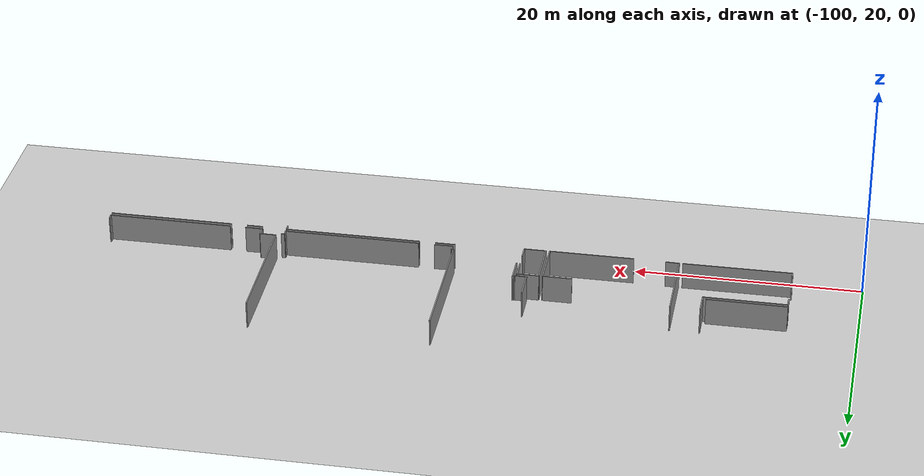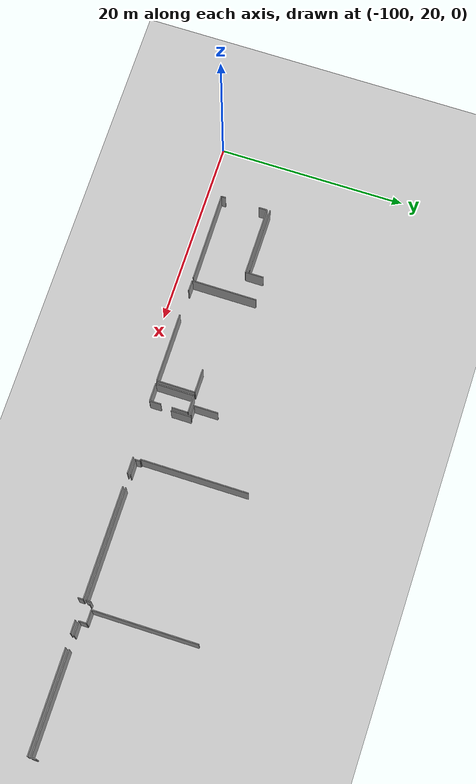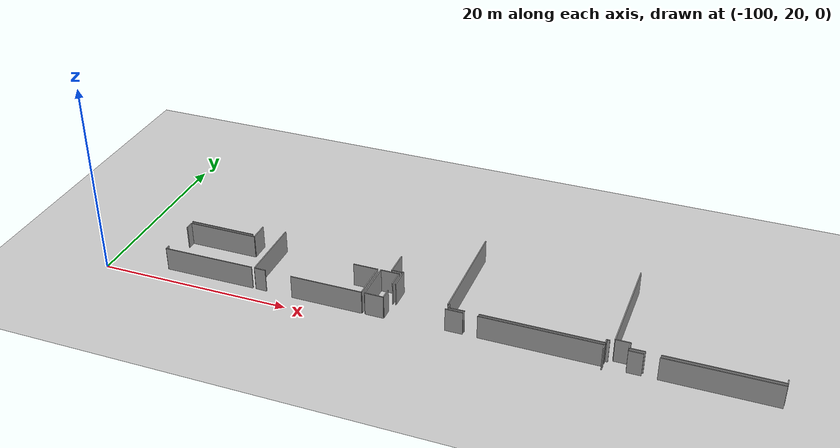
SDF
<sdf version="1.6">
 <world name="default">
  <model name="ground_plane">
   <static>1</static>
   <link name="link">
    <collision name="collision">
     <geometry><plane><normal>0 0 1</normal><size>100 100</size></plane></geometry>
     <surface><friction><ode><mu>100</mu><mu2>50</mu2></ode></friction></surface>
    </collision>
    <visual name="visual">
     <cast_shadows>0</cast_shadows>
     <geometry><plane><normal>0 0 1</normal><size>100 100</size></plane></geometry>
     <material>
      <script><uri>file://media/materials/scripts/gazebo.material</uri><name>Gazebo/Grey</name></script>
     </material>
    </visual>
   </link>
  </model>
  <model name="0510035741_A_40_1_104">
   <static>1</static>
   <link name="Wall_37">
    <collision name="Wall_37_Collision">
     <geometry><box><size>7.02129844527 0.1 2.5</size></box></geometry>
     <pose>3.51064922263 0 1.25 0 0 0</pose>
    </collision>
    <visual name="Wall_37_Visual">
     <pose>3.51064922263 0 1.25 0 0 0</pose>
     <geometry><box><size>7.02129844527 0.1 2.5</size></box></geometry>
     <material>
      <script><uri>file://media/materials/scripts/gazebo.material</uri><name>Gazebo/Grey</name></script>
      <ambient>1 1 1 1</ambient>
     </material>
    </visual>
    <pose>7.02129145738 -22.5134460665 0 0 0 3.1401818091</pose>
   </link>
   <link name="Wall_38">
    <collision name="Wall_38_Collision">
     <geometry><box><size>0.480057911748 0.1 2.5</size></box></geometry>
     <pose>0.240028955874 0 1.25 0 0 0</pose>
    </collision>
    <visual name="Wall_38_Visual">
     <pose>0.240028955874 0 1.25 0 0 0</pose>
     <geometry><box><size>0.480057911748 0.1 2.5</size></box></geometry>
     <material>
      <script><uri>file://media/materials/scripts/gazebo.material</uri><name>Gazebo/Grey</name></script>
      <ambient>1 1 1 1</ambient>
     </material>
    </visual>
    <pose>0.0304798674126 -27.8690127698 0 0 0 1.57079632679</pose>
   </link>
   <link name="Wall_39">
    <collision name="Wall_39_Collision">
     <geometry><box><size>0.88518614944 0.1 2.5</size></box></geometry>
     <pose>0.44259307472 0 1.25 0 0 0</pose>
    </collision>
    <visual name="Wall_39_Visual">
     <pose>0.44259307472 0 1.25 0 0 0</pose>
     <geometry><box><size>0.88518614944 0.1 2.5</size></box></geometry>
     <material>
      <script><uri>file://media/materials/scripts/gazebo.material</uri><name>Gazebo/Grey</name></script>
      <ambient>1 1 1 1</ambient>
     </material>
    </visual>
    <pose>0.0304798674126 -23.7138448448 0 0 0 1.57079632679</pose>
   </link>
   <link name="Wall_40">
    <collision name="Wall_40_Collision">
     <geometry><box><size>7.29383227183 0.1 2.5</size></box></geometry>
     <pose>3.64691613591 0 1.25 0 0 0</pose>
    </collision>
    <visual name="Wall_40_Visual">
     <pose>3.64691613591 0 1.25 0 0 0</pose>
     <geometry><box><size>7.29383227183 0.1 2.5</size></box></geometry>
     <material>
      <script><uri>file://media/materials/scripts/gazebo.material</uri><name>Gazebo/Grey</name></script>
      <ambient>1 1 1 1</ambient>
     </material>
    </visual>
    <pose>0.0304798674126 -22.8286586953 0 0 0 0.0</pose>
   </link>
   <link name="Wall_41">
    <collision name="Wall_41_Collision">
     <geometry><box><size>1.94156755418 0.1 2.5</size></box></geometry>
     <pose>0.970783777091 0 1.25 0 0 0</pose>
    </collision>
    <visual name="Wall_41_Visual">
     <pose>0.970783777091 0 1.25 0 0 0</pose>
     <geometry><box><size>1.94156755418 0.1 2.5</size></box></geometry>
     <material>
      <script><uri>file://media/materials/scripts/gazebo.material</uri><name>Gazebo/Grey</name></script>
      <ambient>1 1 1 1</ambient>
     </material>
    </visual>
    <pose>7.32431213924 -22.8286586953 0 0 0 1.57079632679</pose>
   </link>
   <link name="Wall_45">
    <collision name="Wall_45_Collision">
     <geometry><box><size>9.56702569827 0.1 2.5</size></box></geometry>
     <pose>4.78351284914 0 1.25 0 0 0</pose>
    </collision>
    <visual name="Wall_45_Visual">
     <pose>4.78351284914 0 1.25 0 0 0</pose>
     <geometry><box><size>9.56702569827 0.1 2.5</size></box></geometry>
     <material>
      <script><uri>file://media/materials/scripts/gazebo.material</uri><name>Gazebo/Grey</name></script>
      <ambient>1 1 1 1</ambient>
     </material>
    </visual>
    <pose>9.59734825154 -27.8141490085 0 0 0 -3.13585794943</pose>
   </link>
   <link name="Wall_46">
    <collision name="Wall_46_Collision">
     <geometry><box><size>6.94001181095 0.1 2.5</size></box></geometry>
     <pose>3.47000590547 0 1.25 0 0 0</pose>
    </collision>
    <visual name="Wall_46_Visual">
     <pose>3.47000590547 0 1.25 0 0 0</pose>
     <geometry><box><size>6.94001181095 0.1 2.5</size></box></geometry>
     <material>
      <script><uri>file://media/materials/scripts/gazebo.material</uri><name>Gazebo/Grey</name></script>
      <ambient>1 1 1 1</ambient>
     </material>
    </visual>
    <pose>9.91662486268 -27.805513046 0 0 0 1.57079632679</pose>
   </link>
   <link name="Wall_50">
    <collision name="Wall_50_Collision">
     <geometry><box><size>1.17370753971 0.1 2.5</size></box></geometry>
     <pose>0.586853769855 0 1.25 0 0 0</pose>
    </collision>
    <visual name="Wall_50_Visual">
     <pose>0.586853769855 0 1.25 0 0 0</pose>
     <geometry><box><size>1.17370753971 0.1 2.5</size></box></geometry>
     <material>
      <script><uri>file://media/materials/scripts/gazebo.material</uri><name>Gazebo/Grey</name></script>
      <ambient>1 1 1 1</ambient>
     </material>
    </visual>
    <pose>11.0900997581 -27.8288809444 0 0 0 3.12168186523</pose>
   </link>
   <link name="Wall_55">
    <collision name="Wall_55_Collision">
     <geometry><box><size>2.55980086487 0.1 2.5</size></box></geometry>
     <pose>1.27990043243 0 1.25 0 0 0</pose>
    </collision>
    <visual name="Wall_55_Visual">
     <pose>1.27990043243 0 1.25 0 0 0</pose>
     <geometry><box><size>2.55980086487 0.1 2.5</size></box></geometry>
     <material>
      <script><uri>file://media/materials/scripts/gazebo.material</uri><name>Gazebo/Grey</name></script>
      <ambient>1 1 1 1</ambient>
     </material>
    </visual>
    <pose>18.7692483538 -23.7661686172 0 0 0 0.0</pose>
   </link>
   <link name="Wall_56">
    <collision name="Wall_56_Collision">
     <geometry><box><size>4.09166820124 0.1 2.5</size></box></geometry>
     <pose>2.04583410062 0 1.25 0 0 0</pose>
    </collision>
    <visual name="Wall_56_Visual">
     <pose>2.04583410062 0 1.25 0 0 0</pose>
     <geometry><box><size>4.09166820124 0.1 2.5</size></box></geometry>
     <material>
      <script><uri>file://media/materials/scripts/gazebo.material</uri><name>Gazebo/Grey</name></script>
      <ambient>1 1 1 1</ambient>
     </material>
    </visual>
    <pose>21.3290492186 -23.7661686172 0 0 0 -1.57079632679</pose>
   </link>
   <link name="Wall_57">
    <collision name="Wall_57_Collision">
     <geometry><box><size>7.45437363312 0.1 2.5</size></box></geometry>
     <pose>3.72718681656 0 1.25 0 0 0</pose>
    </collision>
    <visual name="Wall_57_Visual">
     <pose>3.72718681656 0 1.25 0 0 0</pose>
     <geometry><box><size>7.45437363312 0.1 2.5</size></box></geometry>
     <material>
      <script><uri>file://media/materials/scripts/gazebo.material</uri><name>Gazebo/Grey</name></script>
      <ambient>1 1 1 1</ambient>
     </material>
    </visual>
    <pose>21.3290492186 -27.8578368184 0 0 0 -3.13965044532</pose>
   </link>
   <link name="Wall_65">
    <collision name="Wall_65_Collision">
     <geometry><box><size>4.09624018136 0.1 2.5</size></box></geometry>
     <pose>2.04812009068 0 1.25 0 0 0</pose>
    </collision>
    <visual name="Wall_65_Visual">
     <pose>2.04812009068 0 1.25 0 0 0</pose>
     <geometry><box><size>4.09624018136 0.1 2.5</size></box></geometry>
     <material>
      <script><uri>file://media/materials/scripts/gazebo.material</uri><name>Gazebo/Grey</name></script>
      <ambient>1 1 1 1</ambient>
     </material>
    </visual>
    <pose>21.6683917425 -27.8504708505 0 0 0 1.57079632679</pose>
   </link>
   <link name="Wall_66">
    <collision name="Wall_66_Collision">
     <geometry><box><size>1.90981769229 0.1 2.5</size></box></geometry>
     <pose>0.954908846147 0 1.25 0 0 0</pose>
    </collision>
    <visual name="Wall_66_Visual">
     <pose>0.954908846147 0 1.25 0 0 0</pose>
     <geometry><box><size>1.90981769229 0.1 2.5</size></box></geometry>
     <material>
      <script><uri>file://media/materials/scripts/gazebo.material</uri><name>Gazebo/Grey</name></script>
      <ambient>1 1 1 1</ambient>
     </material>
    </visual>
    <pose>21.6683917425 -23.7542306691 0 0 0 0.0</pose>
   </link>
   <link name="Wall_67">
    <collision name="Wall_67_Collision">
     <geometry><box><size>1.71855652428 0.1 2.5</size></box></geometry>
     <pose>0.85927826214 0 1.25 0 0 0</pose>
    </collision>
    <visual name="Wall_67_Visual">
     <pose>0.85927826214 0 1.25 0 0 0</pose>
     <geometry><box><size>1.71855652428 0.1 2.5</size></box></geometry>
     <material>
      <script><uri>file://media/materials/scripts/gazebo.material</uri><name>Gazebo/Grey</name></script>
      <ambient>1 1 1 1</ambient>
     </material>
    </visual>
    <pose>23.5782094348 -23.7542306691 0 0 0 -1.57079632679</pose>
   </link>
   <link name="Wall_68">
    <collision name="Wall_68_Collision">
     <geometry><box><size>1.20243076943 0.1 2.5</size></box></geometry>
     <pose>0.601215384713 0 1.25 0 0 0</pose>
    </collision>
    <visual name="Wall_68_Visual">
     <pose>0.601215384713 0 1.25 0 0 0</pose>
     <geometry><box><size>1.20243076943 0.1 2.5</size></box></geometry>
     <material>
      <script><uri>file://media/materials/scripts/gazebo.material</uri><name>Gazebo/Grey</name></script>
      <ambient>1 1 1 1</ambient>
     </material>
    </visual>
    <pose>23.5782094348 -26.6531200589 0 0 0 -1.57079632679</pose>
   </link>
   <link name="Wall_69">
    <collision name="Wall_69_Collision">
     <geometry><box><size>1.90982444847 0.1 2.5</size></box></geometry>
     <pose>0.954912224235 0 1.25 0 0 0</pose>
    </collision>
    <visual name="Wall_69_Visual">
     <pose>0.954912224235 0 1.25 0 0 0</pose>
     <geometry><box><size>1.90982444847 0.1 2.5</size></box></geometry>
     <material>
      <script><uri>file://media/materials/scripts/gazebo.material</uri><name>Gazebo/Grey</name></script>
      <ambient>1 1 1 1</ambient>
     </material>
    </visual>
    <pose>23.5782094348 -27.8555508284 0 0 0 3.13893273168</pose>
   </link>
   <link name="Wall_70">
    <collision name="Wall_70_Collision">
     <geometry><box><size>2.57808878531 0.1 2.5</size></box></geometry>
     <pose>1.28904439266 0 1.25 0 0 0</pose>
    </collision>
    <visual name="Wall_70_Visual">
     <pose>1.28904439266 0 1.25 0 0 0</pose>
     <geometry><box><size>2.57808878531 0.1 2.5</size></box></geometry>
     <material>
      <script><uri>file://media/materials/scripts/gazebo.material</uri><name>Gazebo/Grey</name></script>
      <ambient>1 1 1 1</ambient>
     </material>
    </visual>
    <pose>22.6996272566 -23.4103161651 0 0 0 1.57079632679</pose>
   </link>
   <link name="Wall_73">
    <collision name="Wall_73_Collision">
     <geometry><box><size>0.114553501692 0.1 2.5</size></box></geometry>
     <pose>0.0572767508461 0 1.25 0 0 0</pose>
    </collision>
    <visual name="Wall_73_Visual">
     <pose>0.0572767508461 0 1.25 0 0 0</pose>
     <geometry><box><size>0.114553501692 0.1 2.5</size></box></geometry>
     <material>
      <script><uri>file://media/materials/scripts/gazebo.material</uri><name>Gazebo/Grey</name></script>
      <ambient>1 1 1 1</ambient>
     </material>
    </visual>
    <pose>23.7595646459 -23.3244645386 0 0 0 -1.57079632679</pose>
   </link>
   <link name="Wall_74">
    <collision name="Wall_74_Collision">
     <geometry><box><size>1.06032592481 0.1 2.5</size></box></geometry>
     <pose>0.530162962403 0 1.25 0 0 0</pose>
    </collision>
    <visual name="Wall_74_Visual">
     <pose>0.530162962403 0 1.25 0 0 0</pose>
     <geometry><box><size>1.06032592481 0.1 2.5</size></box></geometry>
     <material>
      <script><uri>file://media/materials/scripts/gazebo.material</uri><name>Gazebo/Grey</name></script>
      <ambient>1 1 1 1</ambient>
     </material>
    </visual>
    <pose>23.7595646459 -23.4390180403 0 0 0 3.11452042916</pose>
   </link>
   <link name="Wall_85">
    <collision name="Wall_85_Collision">
     <geometry><box><size>2.14933865038 0.1 2.5</size></box></geometry>
     <pose>1.07466932519 0 1.25 0 0 0</pose>
    </collision>
    <visual name="Wall_85_Visual">
     <pose>1.07466932519 0 1.25 0 0 0</pose>
     <geometry><box><size>2.14933865038 0.1 2.5</size></box></geometry>
     <material>
      <script><uri>file://media/materials/scripts/gazebo.material</uri><name>Gazebo/Grey</name></script>
      <ambient>1 1 1 1</ambient>
     </material>
    </visual>
    <pose>23.8952000559 -25.461611242 0 0 0 1.57079632679</pose>
   </link>
   <link name="Wall_110">
    <collision name="Wall_110_Collision">
     <geometry><box><size>1.77189629225 0.1 2.5</size></box></geometry>
     <pose>0.885948146126 0 1.25 0 0 0</pose>
    </collision>
    <visual name="Wall_110_Visual">
     <pose>0.885948146126 0 1.25 0 0 0</pose>
     <geometry><box><size>1.77189629225 0.1 2.5</size></box></geometry>
     <material>
      <script><uri>file://media/materials/scripts/gazebo.material</uri><name>Gazebo/Grey</name></script>
      <ambient>1 1 1 1</ambient>
     </material>
    </visual>
    <pose>29.6889148532 -27.5383062084 0 0 0 0.0</pose>
   </link>
   <link name="Wall_111">
    <collision name="Wall_111_Collision">
     <geometry><box><size>12.0159257307 0.1 2.5</size></box></geometry>
     <pose>6.00796286536 0 1.25 0 0 0</pose>
    </collision>
    <visual name="Wall_111_Visual">
     <pose>6.00796286536 0 1.25 0 0 0</pose>
     <geometry><box><size>12.0159257307 0.1 2.5</size></box></geometry>
     <material>
      <script><uri>file://media/materials/scripts/gazebo.material</uri><name>Gazebo/Grey</name></script>
      <ambient>1 1 1 1</ambient>
     </material>
    </visual>
    <pose>32.888284936 -27.5383062084 0 0 0 0.0</pose>
   </link>
   <link name="Wall_112">
    <collision name="Wall_112_Collision">
     <geometry><box><size>0.552955594643 0.1 2.5</size></box></geometry>
     <pose>0.276477797322 0 1.25 0 0 0</pose>
    </collision>
    <visual name="Wall_112_Visual">
     <pose>0.276477797322 0 1.25 0 0 0</pose>
     <geometry><box><size>0.552955594643 0.1 2.5</size></box></geometry>
     <material>
      <script><uri>file://media/materials/scripts/gazebo.material</uri><name>Gazebo/Grey</name></script>
      <ambient>1 1 1 1</ambient>
     </material>
    </visual>
    <pose>44.9042106667 -27.5383062084 0 0 0 -1.57079632679</pose>
   </link>
   <link name="Wall_117">
    <collision name="Wall_117_Collision">
     <geometry><box><size>1.40562988551 0.1 2.5</size></box></geometry>
     <pose>0.702814942755 0 1.25 0 0 0</pose>
    </collision>
    <visual name="Wall_117_Visual">
     <pose>0.702814942755 0 1.25 0 0 0</pose>
     <geometry><box><size>1.40562988551 0.1 2.5</size></box></geometry>
     <material>
      <script><uri>file://media/materials/scripts/gazebo.material</uri><name>Gazebo/Grey</name></script>
      <ambient>1 1 1 1</ambient>
     </material>
    </visual>
    <pose>47.0675192563 -27.5969799531 0 0 0 0.0</pose>
   </link>
   <link name="Wall_118">
    <collision name="Wall_118_Collision">
     <geometry><box><size>11.0123760962 0.1 2.5</size></box></geometry>
     <pose>5.50618804808 0 1.25 0 0 0</pose>
    </collision>
    <visual name="Wall_118_Visual">
     <pose>5.50618804808 0 1.25 0 0 0</pose>
     <geometry><box><size>11.0123760962 0.1 2.5</size></box></geometry>
     <material>
      <script><uri>file://media/materials/scripts/gazebo.material</uri><name>Gazebo/Grey</name></script>
      <ambient>1 1 1 1</ambient>
     </material>
    </visual>
    <pose>49.908496898 -27.5969799531 0 0 0 0.0</pose>
   </link>
   <link name="Wall_148">
    <collision name="Wall_148_Collision">
     <geometry><box><size>0.518411744909 0.1 2.5</size></box></geometry>
     <pose>0.259205872454 0 1.25 0 0 0</pose>
    </collision>
    <visual name="Wall_148_Visual">
     <pose>0.259205872454 0 1.25 0 0 0</pose>
     <geometry><box><size>0.518411744909 0.1 2.5</size></box></geometry>
     <material>
      <script><uri>file://media/materials/scripts/gazebo.material</uri><name>Gazebo/Grey</name></script>
      <ambient>1 1 1 1</ambient>
     </material>
    </visual>
    <pose>29.8766200367 -27.2543354436 0 0 0 1.57079632679</pose>
   </link>
   <link name="Wall_149">
    <collision name="Wall_149_Collision">
     <geometry><box><size>0.172719248671 0.1 2.5</size></box></geometry>
     <pose>0.0863596243356 0 1.25 0 0 0</pose>
    </collision>
    <visual name="Wall_149_Visual">
     <pose>0.0863596243356 0 1.25 0 0 0</pose>
     <geometry><box><size>0.172719248671 0.1 2.5</size></box></geometry>
     <material>
      <script><uri>file://media/materials/scripts/gazebo.material</uri><name>Gazebo/Grey</name></script>
      <ambient>1 1 1 1</ambient>
     </material>
    </visual>
    <pose>29.8766200367 -26.7359236987 0 0 0 3.14159265359</pose>
   </link>
   <link name="Wall_150">
    <collision name="Wall_150_Collision">
     <geometry><box><size>11.4304582775 0.1 2.5</size></box></geometry>
     <pose>5.71522913875 0 1.25 0 0 0</pose>
    </collision>
    <visual name="Wall_150_Visual">
     <pose>5.71522913875 0 1.25 0 0 0</pose>
     <geometry><box><size>11.4304582775 0.1 2.5</size></box></geometry>
     <material>
      <script><uri>file://media/materials/scripts/gazebo.material</uri><name>Gazebo/Grey</name></script>
      <ambient>1 1 1 1</ambient>
     </material>
    </visual>
    <pose>29.703900788 -26.7359236987 0 0 0 1.57079632679</pose>
   </link>
   <link name="Wall_156">
    <collision name="Wall_156_Collision">
     <geometry><box><size>0.310640648713 0.1 2.5</size></box></geometry>
     <pose>0.155320324357 0 1.25 0 0 0</pose>
    </collision>
    <visual name="Wall_156_Visual">
     <pose>0.155320324357 0 1.25 0 0 0</pose>
     <geometry><box><size>0.310640648713 0.1 2.5</size></box></geometry>
     <material>
      <script><uri>file://media/materials/scripts/gazebo.material</uri><name>Gazebo/Grey</name></script>
      <ambient>1 1 1 1</ambient>
     </material>
    </visual>
    <pose>45.2090093408 -26.7394796833 0 0 0 3.14159265359</pose>
   </link>
   <link name="Wall_157">
    <collision name="Wall_157_Collision">
     <geometry><box><size>0.479295915063 0.1 2.5</size></box></geometry>
     <pose>0.239647957531 0 1.25 0 0 0</pose>
    </collision>
    <visual name="Wall_157_Visual">
     <pose>0.239647957531 0 1.25 0 0 0</pose>
     <geometry><box><size>0.479295915063 0.1 2.5</size></box></geometry>
     <material>
      <script><uri>file://media/materials/scripts/gazebo.material</uri><name>Gazebo/Grey</name></script>
      <ambient>1 1 1 1</ambient>
     </material>
    </visual>
    <pose>44.8983686921 -26.7394796833 0 0 0 -1.57079632679</pose>
   </link>
   <link name="Wall_158">
    <collision name="Wall_158_Collision">
     <geometry><box><size>11.9854458633 0.1 2.5</size></box></geometry>
     <pose>5.99272293166 0 1.25 0 0 0</pose>
    </collision>
    <visual name="Wall_158_Visual">
     <pose>5.99272293166 0 1.25 0 0 0</pose>
     <geometry><box><size>11.9854458633 0.1 2.5</size></box></geometry>
     <material>
      <script><uri>file://media/materials/scripts/gazebo.material</uri><name>Gazebo/Grey</name></script>
      <ambient>1 1 1 1</ambient>
     </material>
    </visual>
    <pose>44.8983686921 -27.2187755983 0 0 0 3.14159265359</pose>
   </link>
   <link name="Wall_159">
    <collision name="Wall_159_Collision">
     <geometry><box><size>1.63106058466 0.1 2.5</size></box></geometry>
     <pose>0.81553029233 0 1.25 0 0 0</pose>
    </collision>
    <visual name="Wall_159_Visual">
     <pose>0.81553029233 0 1.25 0 0 0</pose>
     <geometry><box><size>1.63106058466 0.1 2.5</size></box></geometry>
     <material>
      <script><uri>file://media/materials/scripts/gazebo.material</uri><name>Gazebo/Grey</name></script>
      <ambient>1 1 1 1</ambient>
     </material>
    </visual>
    <pose>31.5072929433 -27.2187755983 0 0 0 -3.11978925569</pose>
   </link>
   <link name="Wall_160">
    <collision name="Wall_160_Collision">
     <geometry><box><size>0.79857252621 0.1 2.5</size></box></geometry>
     <pose>0.399286263105 0 1.25 0 0 0</pose>
    </collision>
    <visual name="Wall_160_Visual">
     <pose>0.399286263105 0 1.25 0 0 0</pose>
     <geometry><box><size>0.79857252621 0.1 2.5</size></box></geometry>
     <material>
      <script><uri>file://media/materials/scripts/gazebo.material</uri><name>Gazebo/Grey</name></script>
      <ambient>1 1 1 1</ambient>
     </material>
    </visual>
    <pose>47.0477073425 -27.2332535353 0 0 0 1.57079632679</pose>
   </link>
   <link name="Wall_161">
    <collision name="Wall_161_Collision">
     <geometry><box><size>1.42315580927 0.1 2.5</size></box></geometry>
     <pose>0.711577904636 0 1.25 0 0 0</pose>
    </collision>
    <visual name="Wall_161_Visual">
     <pose>0.711577904636 0 1.25 0 0 0</pose>
     <geometry><box><size>1.42315580927 0.1 2.5</size></box></geometry>
     <material>
      <script><uri>file://media/materials/scripts/gazebo.material</uri><name>Gazebo/Grey</name></script>
      <ambient>1 1 1 1</ambient>
     </material>
    </visual>
    <pose>47.0477073425 -26.4346810091 0 0 0 3.14159265359</pose>
   </link>
   <link name="Wall_162">
    <collision name="Wall_162_Collision">
     <geometry><box><size>11.1475035084 0.1 2.5</size></box></geometry>
     <pose>5.57375175418 0 1.25 0 0 0</pose>
    </collision>
    <visual name="Wall_162_Visual">
     <pose>5.57375175418 0 1.25 0 0 0</pose>
     <geometry><box><size>11.1475035084 0.1 2.5</size></box></geometry>
     <material>
      <script><uri>file://media/materials/scripts/gazebo.material</uri><name>Gazebo/Grey</name></script>
      <ambient>1 1 1 1</ambient>
     </material>
    </visual>
    <pose>45.6245515332 -26.4346810091 0 0 0 1.57079632679</pose>
   </link>
   <link name="Wall_177">
    <collision name="Wall_177_Collision">
     <geometry><box><size>0.516125754853 0.1 2.5</size></box></geometry>
     <pose>0.258062877426 0 1.25 0 0 0</pose>
    </collision>
    <visual name="Wall_177_Visual">
     <pose>0.258062877426 0 1.25 0 0 0</pose>
     <geometry><box><size>0.516125754853 0.1 2.5</size></box></geometry>
     <material>
      <script><uri>file://media/materials/scripts/gazebo.material</uri><name>Gazebo/Grey</name></script>
      <ambient>1 1 1 1</ambient>
     </material>
    </visual>
    <pose>60.9147770207 -26.7074758225 0 0 0 -1.57079632679</pose>
   </link>
   <link name="Wall_178">
    <collision name="Wall_178_Collision">
     <geometry><box><size>10.9625923127 0.1 2.5</size></box></geometry>
     <pose>5.48129615636 0 1.25 0 0 0</pose>
    </collision>
    <visual name="Wall_178_Visual">
     <pose>5.48129615636 0 1.25 0 0 0</pose>
     <geometry><box><size>10.9625923127 0.1 2.5</size></box></geometry>
     <material>
      <script><uri>file://media/materials/scripts/gazebo.material</uri><name>Gazebo/Grey</name></script>
      <ambient>1 1 1 1</ambient>
     </material>
    </visual>
    <pose>60.9147770207 -27.2236015773 0 0 0 3.14159265359</pose>
   </link>
   <link name="Wall_179">
    <collision name="Wall_179_Collision">
     <geometry><box><size>1.51005427838 0.1 2.5</size></box></geometry>
     <pose>0.755027139192 0 1.25 0 0 0</pose>
    </collision>
    <visual name="Wall_179_Visual">
     <pose>0.755027139192 0 1.25 0 0 0</pose>
     <geometry><box><size>1.51005427838 0.1 2.5</size></box></geometry>
     <material>
      <script><uri>file://media/materials/scripts/gazebo.material</uri><name>Gazebo/Grey</name></script>
      <ambient>1 1 1 1</ambient>
     </material>
    </visual>
    <pose>48.5577307739 -27.2236015773 0 0 0 -3.13520081465</pose>
   </link>
   <pose>-93.95 49.6727497285 0 0 0 0</pose>
  </model>
 </world>
</sdf>
